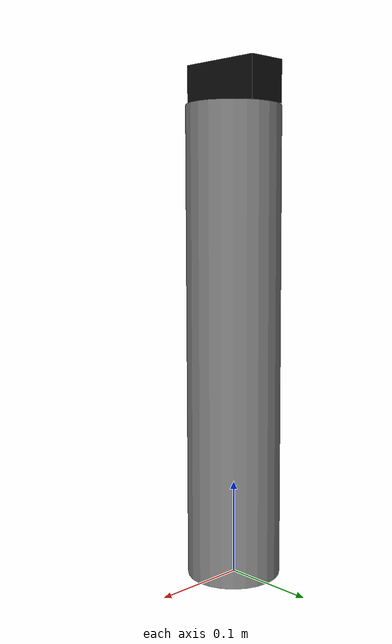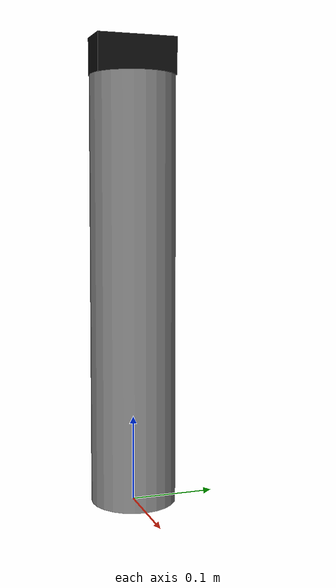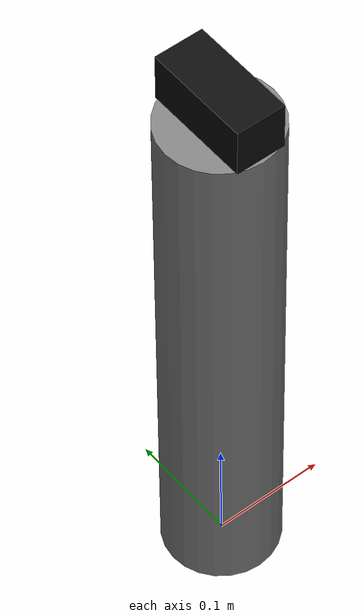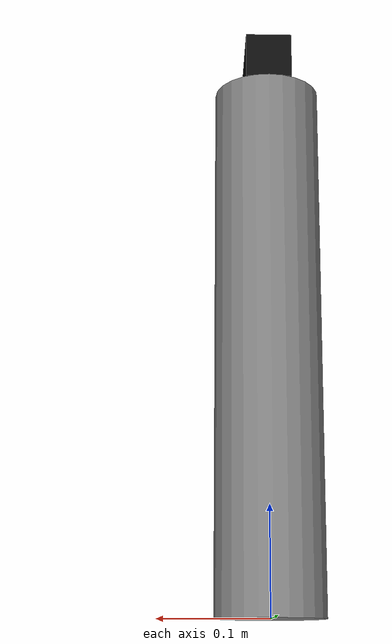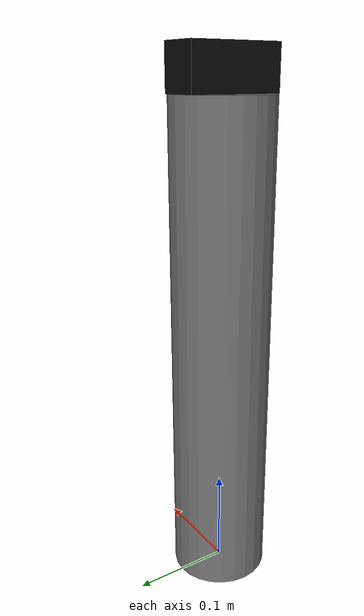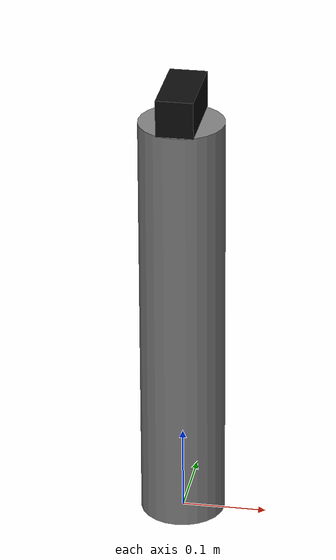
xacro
<?xml version='1.0'?>

<robot name="camera_test" xmlns:xacro="http://www.ros.org/wiki/xacro">
    <xacro:property name="robot_name" value="camera_test" />

    <!-- Import sensor plugin -->
    <gazebo>
        <plugin filename="ignition-gazebo-sensors-system"
            name="gz::sim::systems::Sensors">
            <render_engine>ogre2</render_engine>
        </plugin>
    </gazebo>

    <!-- Make Base Link -->
    <link name="base_link">
        <origin rpy="0 0 0" xyz="0 0 0"/>
    </link>

	<!-- Make stand link -->
    <link name="camera_stand">
        <inertial>
            <origin xyz="0.0 0.0 0.0" rpy="0.0 0.0 0.0"/>
            <mass value="1.0"/>
            <inertia ixx="0.0416666666667" ixy="0.0" ixz="0.0" iyy="0.0416666666667" iyz="0.0" izz="0.0416666666667"/>
        </inertial>
        <visual name="camera_stand_visual">
            <origin xyz="0.0 0.0 0.0" rpy="0.0 0.0 0.0"/>
            <geometry>
                <cylinder radius="0.05" length="0.5"/>
            </geometry>
            <material name="camera_stand">
                <color rgba="0.5 0.5 0.5 1.0"/>
            </material>
        </visual>
        <collision>
            <origin xyz="0.0 0.0 0.0" rpy="0.0 0.0 0.0"/>
            <geometry>
                <cylinder radius="0.05" length="0.5"/>
            </geometry>
        </collision>
    </link>

    <joint name="base_stand_joint" type="fixed">
        <origin xyz="0.0 0.0 0.25" rpy="0.0 0.0 0.0"/>
        <parent link="base_link"/>
        <child link="camera_stand"/>
    </joint>

    <link name="camera">
        <inertial>
            <origin xyz="0.0 0.0 0.0" rpy="0.0 0.0 0.0"/>
            <mass value="0.0"/>
            <inertia ixx="0.0" ixy="0.0" ixz="0.0" iyy="0.0" iyz="0.0" izz="0.0"/>
        </inertial>
        <visual name="camera_visual">
            <origin xyz="0.0 0.0 0.0" rpy="0.0 0.0 0.0"/>
            <geometry>
                <box size="0.094 0.0433 0.0433"/>
            </geometry>
            <material name="camera">
                <color rgba="0.05 0.05 0.05 1.0"/>
            </material>
        </visual>
        <collision>
            <origin xyz="0.0 0.0 0.0" rpy="0.0 0.0 0.0"/>
            <geometry>
                <box size="0.094 0.0433 0.0433"/>
            </geometry>
        </collision>
    </link>

    <joint name="stand_camera_joint" type="fixed">
        <origin xyz="0.0 0.0 0.27165" rpy="0.0 0.0 -1.57079632679"/>
        <parent link="camera_stand"/>
        <child link="camera"/>
    </joint>

    <!-- Attach the sensor itself to the model -->
    <gazebo>
        <frame name="camera_frame" attached_to='camera'>
            <pose>0 0 0 0 0 1.57079632679</pose>
        </frame>
    </gazebo>

    <gazebo reference="camera">
        <sensor name="camera" type="camera">
            <camera>
              <horizontal_fov>1.047</horizontal_fov>
              <image>
                <width>320</width>
                <height>240</height>
              </image>
              <clip>
                <near>0.1</near>
                <far>100</far>
              </clip>
            </camera>
            <always_on>1</always_on>
            <update_rate>30</update_rate>
            <visualize>true</visualize>
            <topic>camera</topic>
            <pose relative_to='camera_frame'>0 0 0 0 0 0</pose>
            <enable_metrics>true</enable_metrics>
          </sensor>
    </gazebo>

</robot>
